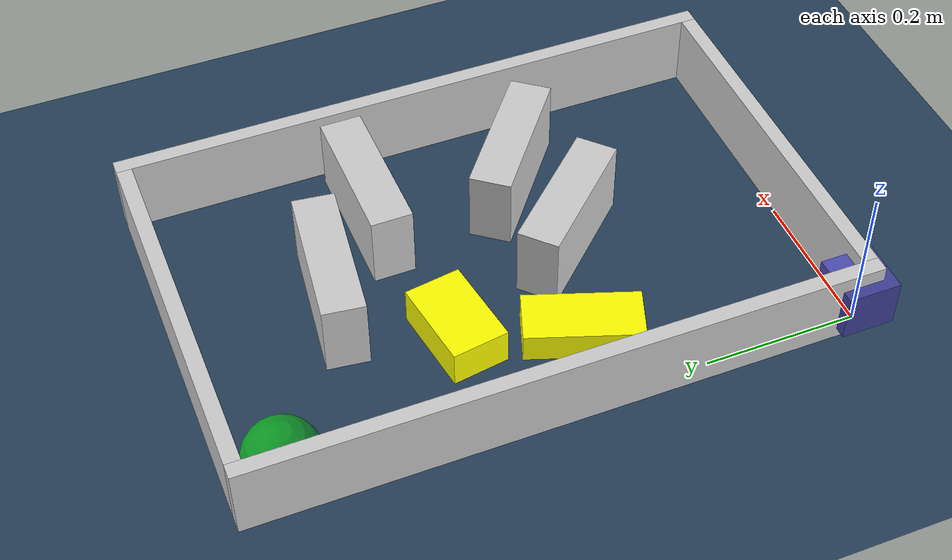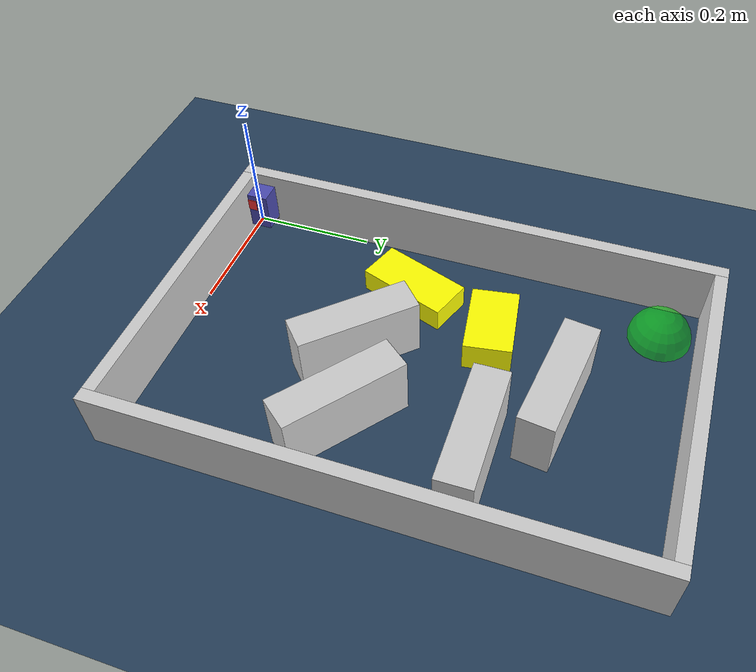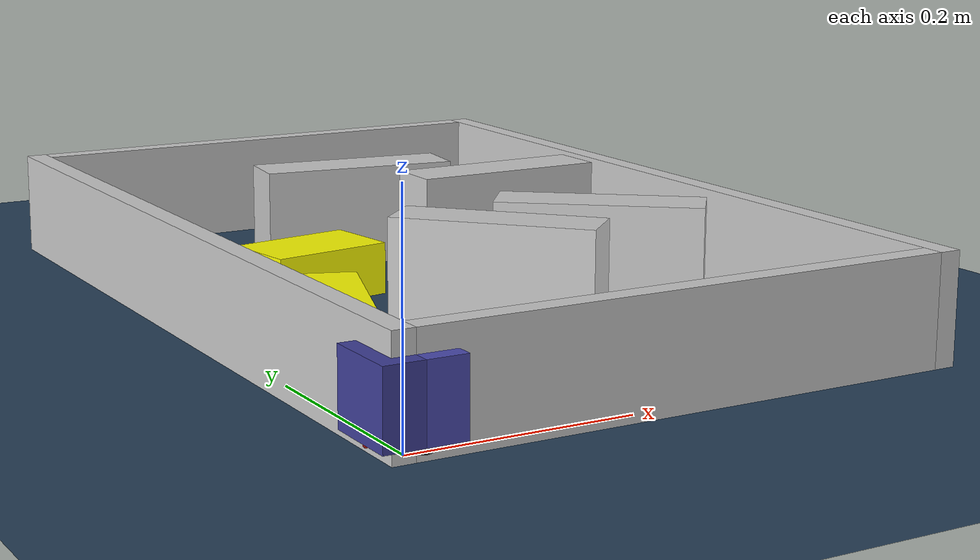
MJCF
<?xml version="1.0" ?>
<mujoco model="generated_environment">
  <option cone="elliptic" integrator="implicitfast" iterations="100" timestep="0.002"/>
  <default>
    <geom density="1"/>
  </default>
  <asset>
    <texture builtin="gradient" height="3072" rgb1="0.3 0.5 0.7" rgb2="0 0 0" type="skybox" width="512"/>
    <texture builtin="checker" height="300" mark="edge" markrgb="0.8 0.8 0.8" name="groundplane" rgb1="0.2 0.3 0.4" rgb2="0.1 0.2 0.3" type="2d" width="300"/>
    <material name="groundplane" reflectance="0.2" texrepeat="5 5" texture="groundplane" texuniform="true"/>
    <material name="robot" rgba="1.0 1.0 0.0 1.0"/>
  </asset>
  <include file="/home/dhruv/projects_dhruv/namo/namo_cpp/test_xml/little-car-modeling-package/assets/mjcf/little_car.xml"/>
  <worldbody>
    <light dir="0 0 -1" directional="true" pos="0 0 1.5"/>
    <geom condim="4" friction="0.5 0.005 0.001" material="groundplane" name="floor" size="0 0 0.05" type="plane"/>
    <body name="walls">
      <geom name="wall_1" condim="4" pos="-0.01 0.3875 0.05" friction="1 0.005 0.0001" rgba="0.800000011920929 0.800000011920929 0.800000011920929 1.0" size="0.01 0.40750000000000003 0.05" type="box"/>
      <geom name="wall_2" condim="4" pos="0.5 0.3875 0.05" friction="1 0.005 0.0001" rgba="0.800000011920929 0.800000011920929 0.800000011920929 1.0" size="0.01 0.40750000000000003 0.05" type="box"/>
      <geom name="wall_3" condim="4" pos="0.245 -0.01 0.05" friction="1 0.005 0.0001" rgba="0.800000011920929 0.800000011920929 0.800000011920929 1.0" size="0.245 0.01 0.05" type="box"/>
      <geom name="wall_4" condim="4" pos="0.245 0.785 0.05" friction="1 0.005 0.0001" rgba="0.800000011920929 0.800000011920929 0.800000011920929 1.0" size="0.245 0.01 0.05" type="box"/>
    </body>
    <body name="obstacle_1_movable">
      <geom name="obstacle_1_movable" condim="4" pos="0.09789122032812188 0.3226284623760087 0.02" quat="-0.9852169038133548 0 0 0.17131156540183384" friction="1 0.005 0.0001" rgba="1 1 0 1" size="0.035 0.075 0.02" type="box" mass="0.1"/>
      <joint type="free"/>
    </body>
    <body name="obstacle_2_movable">
      <geom name="obstacle_2_movable" condim="4" pos="0.151346256964828 0.46698905569956195 0.025" quat="0.6514672009936286 0 0 0.7586767994538433" friction="1 0.005 0.0001" rgba="1 1 0 1" size="0.0375 0.06 0.025" type="box" mass="0.1"/>
      <joint type="free"/>
    </body>
    <body name="wall_5">
      <geom name="wall_5" condim="4" pos="0.25822530793944815 0.5908629902922854 0.05" quat="0.7501453022863873 0 0 0.6612730339713427" friction="1 0.005 0.0001" rgba="0.800000011920929 0.800000011920929 0.800000011920929 1.0" size="0.0275 0.0975 0.05" type="box"/>
    </body>
    <body name="wall_6">
      <geom name="wall_6" condim="4" pos="0.37219593623453384 0.3042304886276151 0.05" quat="-0.4363625316255826 0 0 0.8997709380688579" friction="1 0.005 0.0001" rgba="0.800000011920929 0.800000011920929 0.800000011920929 1.0" size="0.0275 0.0975 0.05" type="box"/>
    </body>
    <body name="wall_7">
      <geom name="wall_7" condim="4" pos="0.37797620305692603 0.5013761915876095 0.05" quat="0.7038301147322237 0 0 0.7103683337508964" friction="1 0.005 0.0001" rgba="0.800000011920929 0.800000011920929 0.800000011920929 1.0" size="0.0275 0.0975 0.05" type="box"/>
    </body>
    <body name="wall_8">
      <geom name="wall_8" condim="4" pos="0.24624119623759505 0.27887098488721934 0.05" quat="0.3958415390071234 0 0 0.9183188313415293" friction="1 0.005 0.0001" rgba="0.800000011920929 0.800000011920929 0.800000011920929 1.0" size="0.095 0.0275 0.05" type="box"/>
    </body>
    <site name="goal" type="sphere" size="0.05 0.05 0.05" rgba="0 1 0 0.5" pos="0.060502 0.718623 0.0"/>
  </worldbody>
</mujoco>

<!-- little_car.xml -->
<mujoco model="little_car">
  <compiler angle="radian" autolimits="true"/>
  <default>
    <geom condim="4"/>
    <joint damping="0.01" armature="0.0001"/>
  </default>
  <worldbody>
    <body name="car" pos="0 0 0.010000">
      <freejoint name="car_freejoint"/>
      <inertial pos="0.000000 0 0.037500" mass="0.350000"
                diaginertia="0.000266 0.000266 0.000286"/>
      <geom name="front_chassis_collision" type="box" pos="0.017500 0 0.037500"
            size="0.017500 0.035000 0.032500"
            rgba="0.3 0.3 0.7 1"/>
      <geom name="rear_chassis_collision" type="box" pos="-0.017500 0 0.037500"
            size="0.017500 0.035000 0.032500"
            rgba="0.25 0.25 0.6 1"/>
      <geom name="front_marker" type="box" pos="0.034000 0 0.050500"
            size="0.002000 0.015000 0.010000"
            rgba="1.0 0.2 0.2 1" contype="0" conaffinity="0"/>

      <body name="rear_support_body" pos="-0.030000 0.000000 0.002500">
        <joint name="rear_caster_joint" type="ball" damping="0.0001"/>
        <inertial pos="0 0 0" mass="0.025000"
                  diaginertia="0.000001 0.000001 0.000001"/>
        <geom name="rear_support" type="sphere"
              pos="0 0 0"
              size="0.002500"
              friction="0.000000 0.000000 0.000000"
              rgba="0.7 0.1 0.1 1"/>
      </body>

      <body name="front_support_body" pos="0.030000 0.000000 0.002500">
        <joint name="front_caster_joint" type="ball" damping="0.0001"/>
        <inertial pos="0 0 0" mass="0.025000"
                  diaginertia="0.000001 0.000001 0.000001"/>
        <geom name="front_support" type="sphere"
              pos="0 0 0"
              size="0.002500"
              friction="0.000000 0.000000 0.000000"
              rgba="0.1 0.7 0.1 1"/>
      </body>

      <body name="left_wheel" pos="0.000000 0.034000 0.015000">
        <inertial pos="0 0 0" mass="0.050000"
                  diaginertia="0.000003 0.000006 0.000003"/>
        <joint name="left_wheel_joint" type="hinge" axis="0 1 0"/>
        <geom name="left_wheel_collision" type="cylinder" size="0.015000 0.000500"
              euler="1.57079632679 0 0" rgba="0.1 0.1 0.1 1"/>
      </body>

      <body name="right_wheel" pos="0.000000 -0.034000 0.015000">
        <inertial pos="0 0 0" mass="0.050000"
                  diaginertia="0.000003 0.000006 0.000003"/>
        <joint name="right_wheel_joint" type="hinge" axis="0 1 0"/>
        <geom name="right_wheel_collision" type="cylinder" size="0.015000 0.000500"
              euler="1.57079632679 0 0" rgba="0.1 0.1 0.1 1"/>
      </body>
    </body>
  </worldbody>
  <contact>
    <exclude body1="car" body2="left_wheel"/>
    <exclude body1="car" body2="right_wheel"/>
  </contact>
  <actuator>
    <velocity name="left_wheel_drive" joint="left_wheel_joint"
              ctrlrange="-25.000000 25.000000"
              kv="0.750000" forcerange="-0.500000 0.500000"/>
    <velocity name="right_wheel_drive" joint="right_wheel_joint"
              ctrlrange="-25.000000 25.000000"
              kv="0.750000" forcerange="-0.500000 0.500000"/>
  </actuator>
</mujoco>
